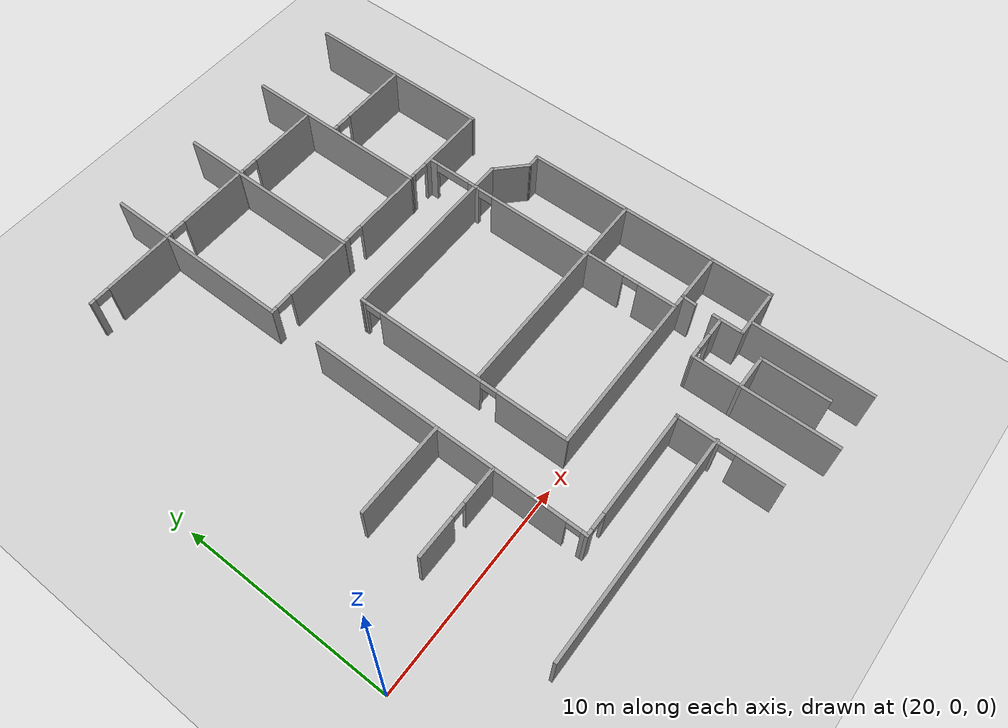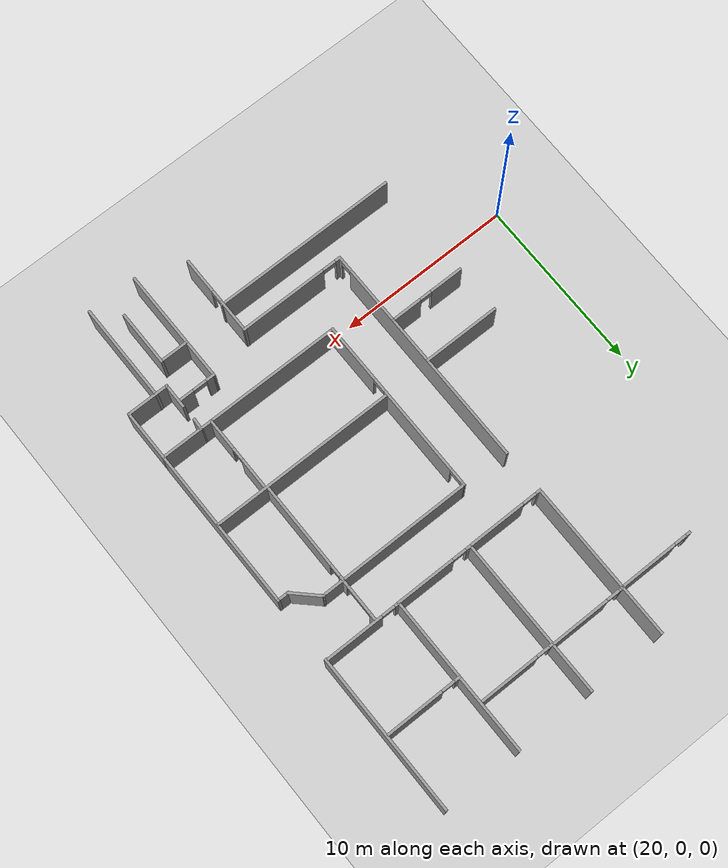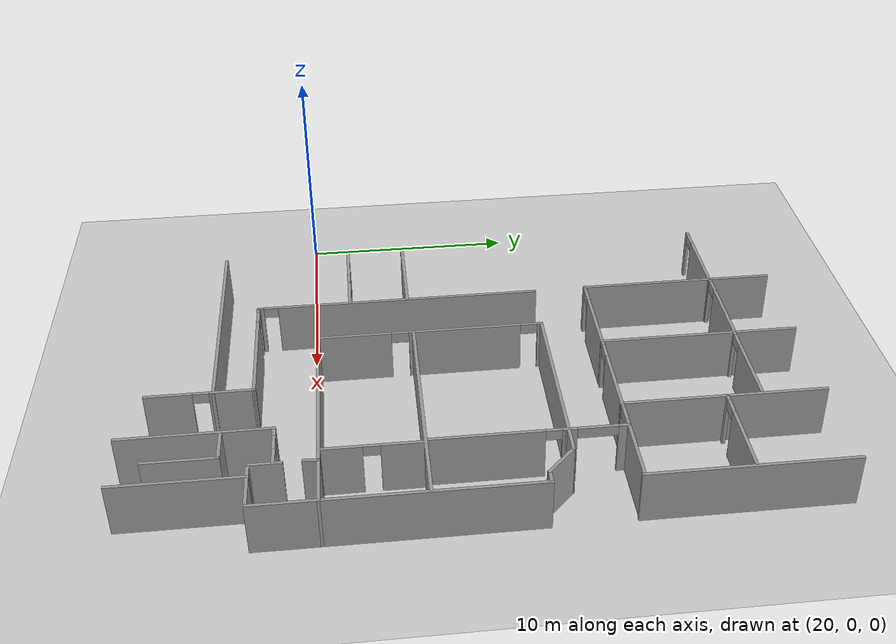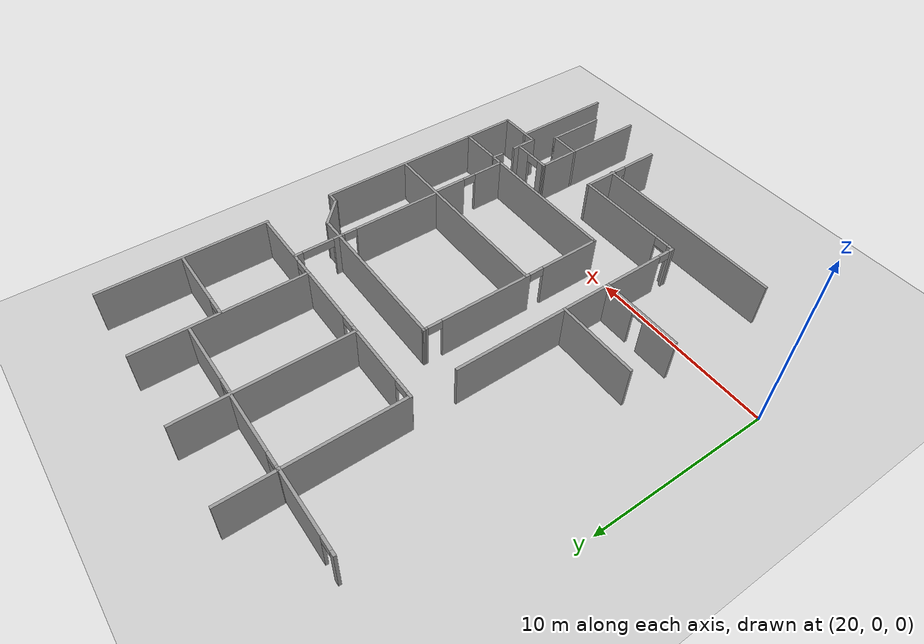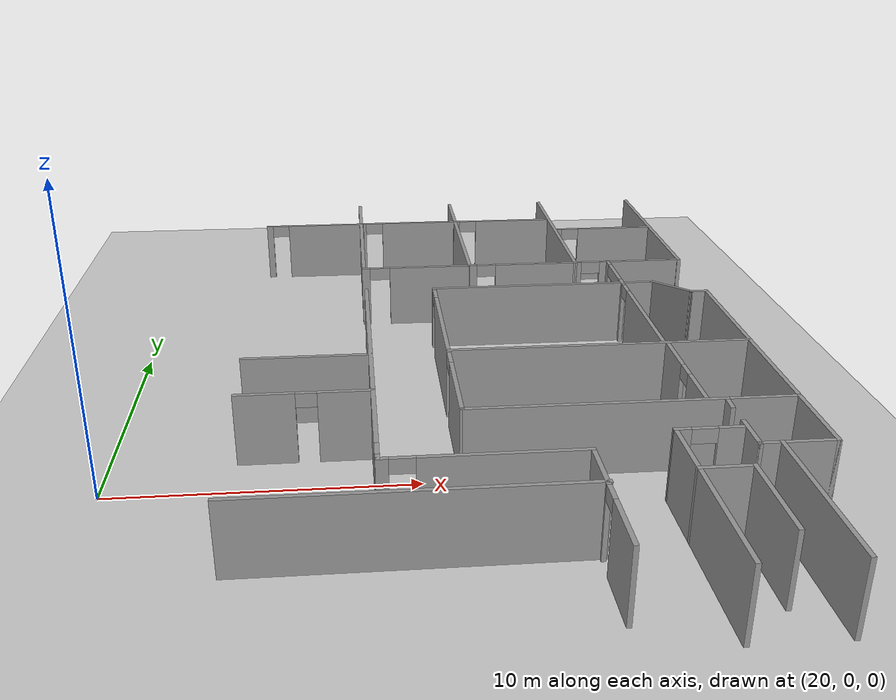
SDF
<sdf version="1.7">
 <world name="default">
  <model name="ground_plane">
   <static>1</static>
   <link name="link">
    <collision name="collision">
     <geometry><plane><normal>0 0 1</normal><size>100 100</size></plane></geometry>
     <surface>
      <contact><collide_bitmask>65535</collide_bitmask></contact>
      <friction><ode><mu>100</mu><mu2>50</mu2></ode></friction>
     </surface>
    </collision>
    <visual name="visual">
     <cast_shadows>0</cast_shadows>
     <geometry><plane><normal>0 0 1</normal><size>100 100</size></plane></geometry>
     <material>
      <script><uri>file://media/materials/scripts/gazebo.material</uri><name>Gazebo/Grey</name></script>
     </material>
    </visual>
   </link>
  </model>
  <model name="anglo_3_andar_metade">
   <pose>-4.28797 -1.08288 0 0 -0 0</pose>
   <link name="Wall_11">
    <collision name="Wall_11_Collision">
     <geometry><box><size>9.25 0.15 2.5</size></box></geometry>
     <pose>0 0 1.25 0 -0 0</pose>
    </collision>
    <visual name="Wall_11_Visual">
     <pose>0 0 1.25 0 -0 0</pose>
     <geometry><box><size>9.25 0.15 2.5</size></box></geometry>
     <material>
      <script><uri>file://media/materials/scripts/gazebo.material</uri><name>Gazebo/Grey</name></script>
      <ambient>1 1 1 1</ambient>
     </material>
     <meta><layer>0</layer></meta>
    </visual>
    <pose>41.6877 18.8137 0 0 -0 -1.5708</pose>
   </link>
   <link name="Wall_13">
    <pose>43.8627 14.2737 0 0 -0 0</pose>
    <visual name="Wall_13_Visual_0">
     <pose>-2.08 0 1.25 0 -0 0</pose>
     <geometry><box><size>0.34 0.15 2.5</size></box></geometry>
     <material>
      <script><uri>file://media/materials/scripts/gazebo.material</uri><name>Gazebo/Grey</name></script>
      <ambient>1 1 1 1</ambient>
     </material>
     <meta><layer>0</layer></meta>
    </visual>
    <collision name="Wall_13_Collision_0">
     <geometry><box><size>0.34 0.15 2.5</size></box></geometry>
     <pose>-2.08 0 1.25 0 -0 0</pose>
    </collision>
    <visual name="Wall_13_Visual_1">
     <pose>0.56 0 1.25 0 -0 0</pose>
     <geometry><box><size>3.38 0.15 2.5</size></box></geometry>
     <material>
      <script><uri>file://media/materials/scripts/gazebo.material</uri><name>Gazebo/Grey</name></script>
      <ambient>1 1 1 1</ambient>
     </material>
     <meta><layer>0</layer></meta>
    </visual>
    <collision name="Wall_13_Collision_1">
     <geometry><box><size>3.38 0.15 2.5</size></box></geometry>
     <pose>0.56 0 1.25 0 -0 0</pose>
    </collision>
    <visual name="Wall_13_Visual_2">
     <pose>-1.52 0 2.25 0 -0 0</pose>
     <geometry><box><size>0.78 0.15 0.5</size></box></geometry>
     <material>
      <script><uri>file://media/materials/scripts/gazebo.material</uri><name>Gazebo/Grey</name></script>
      <ambient>1 1 1 1</ambient>
     </material>
     <meta><layer>0</layer></meta>
    </visual>
    <collision name="Wall_13_Collision_2">
     <geometry><box><size>0.78 0.15 0.5</size></box></geometry>
     <pose>-1.52 0 2.25 0 -0 0</pose>
    </collision>
   </link>
   <link name="Wall_15">
    <pose>43.8727 18.9037 0 0 -0 0</pose>
    <visual name="Wall_15_Visual_0">
     <pose>-2.065 0 1.25 0 -0 0</pose>
     <geometry><box><size>0.370002 0.15 2.5</size></box></geometry>
     <material>
      <script><uri>file://media/materials/scripts/gazebo.material</uri><name>Gazebo/Grey</name></script>
      <ambient>1 1 1 1</ambient>
     </material>
     <meta><layer>0</layer></meta>
    </visual>
    <collision name="Wall_15_Collision_0">
     <geometry><box><size>0.370002 0.15 2.5</size></box></geometry>
     <pose>-2.065 0 1.25 0 -0 0</pose>
    </collision>
    <visual name="Wall_15_Visual_1">
     <pose>0.575001 0 1.25 0 -0 0</pose>
     <geometry><box><size>3.35 0.15 2.5</size></box></geometry>
     <material>
      <script><uri>file://media/materials/scripts/gazebo.material</uri><name>Gazebo/Grey</name></script>
      <ambient>1 1 1 1</ambient>
     </material>
     <meta><layer>0</layer></meta>
    </visual>
    <collision name="Wall_15_Collision_1">
     <geometry><box><size>3.35 0.15 2.5</size></box></geometry>
     <pose>0.575001 0 1.25 0 -0 0</pose>
    </collision>
    <visual name="Wall_15_Visual_2">
     <pose>-1.49 0 2.25 0 -0 0</pose>
     <geometry><box><size>0.78 0.15 0.5</size></box></geometry>
     <material>
      <script><uri>file://media/materials/scripts/gazebo.material</uri><name>Gazebo/Grey</name></script>
      <ambient>1 1 1 1</ambient>
     </material>
     <meta><layer>0</layer></meta>
    </visual>
    <collision name="Wall_15_Collision_2">
     <geometry><box><size>0.78 0.15 0.5</size></box></geometry>
     <pose>-1.49 0 2.25 0 -0 0</pose>
    </collision>
   </link>
   <link name="Wall_17">
    <collision name="Wall_17_Collision">
     <geometry><box><size>9.25 0.15 2.5</size></box></geometry>
     <pose>0 0 1.25 0 -0 0</pose>
    </collision>
    <visual name="Wall_17_Visual">
     <pose>0 0 1.25 0 -0 0</pose>
     <geometry><box><size>9.25 0.15 2.5</size></box></geometry>
     <material>
      <script><uri>file://media/materials/scripts/gazebo.material</uri><name>Gazebo/Grey</name></script>
      <ambient>1 1 1 1</ambient>
     </material>
     <meta><layer>0</layer></meta>
    </visual>
    <pose>37.1877 18.8237 0 0 -0 -1.5708</pose>
   </link>
   <link name="Wall_19">
    <pose>39.4377 14.2687 0 0 -0 -0.002222</pose>
    <visual name="Wall_19_Visual_0">
     <pose>-2.13754 0 1.25 0 -0 0</pose>
     <geometry><box><size>0.374924 0.15 2.5</size></box></geometry>
     <material>
      <script><uri>file://media/materials/scripts/gazebo.material</uri><name>Gazebo/Grey</name></script>
      <ambient>1 1 1 1</ambient>
     </material>
     <meta><layer>0</layer></meta>
    </visual>
    <collision name="Wall_19_Collision_0">
     <geometry><box><size>0.374924 0.15 2.5</size></box></geometry>
     <pose>-2.13754 0 1.25 0 -0 0</pose>
    </collision>
    <visual name="Wall_19_Visual_1">
     <pose>0.587462 0 1.25 0 -0 0</pose>
     <geometry><box><size>3.47508 0.15 2.5</size></box></geometry>
     <material>
      <script><uri>file://media/materials/scripts/gazebo.material</uri><name>Gazebo/Grey</name></script>
      <ambient>1 1 1 1</ambient>
     </material>
     <meta><layer>0</layer></meta>
    </visual>
    <collision name="Wall_19_Collision_1">
     <geometry><box><size>3.47508 0.15 2.5</size></box></geometry>
     <pose>0.587462 0 1.25 0 -0 0</pose>
    </collision>
    <visual name="Wall_19_Visual_2">
     <pose>-1.55008 0 2.25 0 -0 0</pose>
     <geometry><box><size>0.8 0.15 0.5</size></box></geometry>
     <material>
      <script><uri>file://media/materials/scripts/gazebo.material</uri><name>Gazebo/Grey</name></script>
      <ambient>1 1 1 1</ambient>
     </material>
     <meta><layer>0</layer></meta>
    </visual>
    <collision name="Wall_19_Collision_2">
     <geometry><box><size>0.8 0.15 0.5</size></box></geometry>
     <pose>-1.55008 0 2.25 0 -0 0</pose>
    </collision>
   </link>
   <link name="Wall_21">
    <pose>39.3627 20.4837 0 0 -0 0</pose>
    <visual name="Wall_21_Visual_0">
     <pose>-2.11 0 1.25 0 -0 0</pose>
     <geometry><box><size>0.280001 0.15 2.5</size></box></geometry>
     <material>
      <script><uri>file://media/materials/scripts/gazebo.material</uri><name>Gazebo/Grey</name></script>
      <ambient>1 1 1 1</ambient>
     </material>
     <meta><layer>0</layer></meta>
    </visual>
    <collision name="Wall_21_Collision_0">
     <geometry><box><size>0.280001 0.15 2.5</size></box></geometry>
     <pose>-2.11 0 1.25 0 -0 0</pose>
    </collision>
    <visual name="Wall_21_Visual_1">
     <pose>0.525 0 1.25 0 -0 0</pose>
     <geometry><box><size>3.45 0.15 2.5</size></box></geometry>
     <material>
      <script><uri>file://media/materials/scripts/gazebo.material</uri><name>Gazebo/Grey</name></script>
      <ambient>1 1 1 1</ambient>
     </material>
     <meta><layer>0</layer></meta>
    </visual>
    <collision name="Wall_21_Collision_1">
     <geometry><box><size>3.45 0.15 2.5</size></box></geometry>
     <pose>0.525 0 1.25 0 -0 0</pose>
    </collision>
    <visual name="Wall_21_Visual_2">
     <pose>-1.585 0 2.25 0 -0 0</pose>
     <geometry><box><size>0.77 0.15 0.5</size></box></geometry>
     <material>
      <script><uri>file://media/materials/scripts/gazebo.material</uri><name>Gazebo/Grey</name></script>
      <ambient>1 1 1 1</ambient>
     </material>
     <meta><layer>0</layer></meta>
    </visual>
    <collision name="Wall_21_Collision_2">
     <geometry><box><size>0.77 0.15 0.5</size></box></geometry>
     <pose>-1.585 0 2.25 0 -0 0</pose>
    </collision>
   </link>
   <link name="Wall_23">
    <collision name="Wall_23_Collision">
     <geometry><box><size>9.25 0.15 2.5</size></box></geometry>
     <pose>0 0 1.25 0 -0 0</pose>
    </collision>
    <visual name="Wall_23_Visual">
     <pose>0 0 1.25 0 -0 0</pose>
     <geometry><box><size>9.25 0.15 2.5</size></box></geometry>
     <material>
      <script><uri>file://media/materials/scripts/gazebo.material</uri><name>Gazebo/Grey</name></script>
      <ambient>1 1 1 1</ambient>
     </material>
     <meta><layer>0</layer></meta>
    </visual>
    <pose>32.7377 18.8237 0 0 -0 -1.5708</pose>
   </link>
   <link name="Wall_25">
    <pose>34.9127 14.2637 0 0 -0 0</pose>
    <visual name="Wall_25_Visual_0">
     <pose>-2.085 0 1.25 0 -0 0</pose>
     <geometry><box><size>0.329999 0.15 2.5</size></box></geometry>
     <material>
      <script><uri>file://media/materials/scripts/gazebo.material</uri><name>Gazebo/Grey</name></script>
      <ambient>1 1 1 1</ambient>
     </material>
     <meta><layer>0</layer></meta>
    </visual>
    <collision name="Wall_25_Collision_0">
     <geometry><box><size>0.329999 0.15 2.5</size></box></geometry>
     <pose>-2.085 0 1.25 0 -0 0</pose>
    </collision>
    <visual name="Wall_25_Visual_1">
     <pose>0.579999 0 1.25 0 -0 0</pose>
     <geometry><box><size>3.34 0.15 2.5</size></box></geometry>
     <material>
      <script><uri>file://media/materials/scripts/gazebo.material</uri><name>Gazebo/Grey</name></script>
      <ambient>1 1 1 1</ambient>
     </material>
     <meta><layer>0</layer></meta>
    </visual>
    <collision name="Wall_25_Collision_1">
     <geometry><box><size>3.34 0.15 2.5</size></box></geometry>
     <pose>0.579999 0 1.25 0 -0 0</pose>
    </collision>
    <visual name="Wall_25_Visual_2">
     <pose>-1.505 0 2.25 0 -0 0</pose>
     <geometry><box><size>0.83 0.15 0.5</size></box></geometry>
     <material>
      <script><uri>file://media/materials/scripts/gazebo.material</uri><name>Gazebo/Grey</name></script>
      <ambient>1 1 1 1</ambient>
     </material>
     <meta><layer>0</layer></meta>
    </visual>
    <collision name="Wall_25_Collision_2">
     <geometry><box><size>0.83 0.15 0.5</size></box></geometry>
     <pose>-1.505 0 2.25 0 -0 0</pose>
    </collision>
   </link>
   <link name="Wall_27">
    <pose>34.9127 20.5137 0 0 -0 0</pose>
    <visual name="Wall_27_Visual_0">
     <pose>-2.0975 0 1.25 0 -0 0</pose>
     <geometry><box><size>0.305002 0.15 2.5</size></box></geometry>
     <material>
      <script><uri>file://media/materials/scripts/gazebo.material</uri><name>Gazebo/Grey</name></script>
      <ambient>1 1 1 1</ambient>
     </material>
     <meta><layer>0</layer></meta>
    </visual>
    <collision name="Wall_27_Collision_0">
     <geometry><box><size>0.305002 0.15 2.5</size></box></geometry>
     <pose>-2.0975 0 1.25 0 -0 0</pose>
    </collision>
    <visual name="Wall_27_Visual_1">
     <pose>0.537501 0 1.25 0 -0 0</pose>
     <geometry><box><size>3.425 0.15 2.5</size></box></geometry>
     <material>
      <script><uri>file://media/materials/scripts/gazebo.material</uri><name>Gazebo/Grey</name></script>
      <ambient>1 1 1 1</ambient>
     </material>
     <meta><layer>0</layer></meta>
    </visual>
    <collision name="Wall_27_Collision_1">
     <geometry><box><size>3.425 0.15 2.5</size></box></geometry>
     <pose>0.537501 0 1.25 0 -0 0</pose>
    </collision>
    <visual name="Wall_27_Visual_2">
     <pose>-1.56 0 2.25 0 -0 0</pose>
     <geometry><box><size>0.77 0.15 0.5</size></box></geometry>
     <material>
      <script><uri>file://media/materials/scripts/gazebo.material</uri><name>Gazebo/Grey</name></script>
      <ambient>1 1 1 1</ambient>
     </material>
     <meta><layer>0</layer></meta>
    </visual>
    <collision name="Wall_27_Collision_2">
     <geometry><box><size>0.77 0.15 0.5</size></box></geometry>
     <pose>-1.56 0 2.25 0 -0 0</pose>
    </collision>
   </link>
   <link name="Wall_36">
    <pose>30.5927 20.4837 0 0 -0 0</pose>
    <visual name="Wall_36_Visual_0">
     <pose>-2.11 0 1.25 0 -0 0</pose>
     <geometry><box><size>0.28 0.15 2.5</size></box></geometry>
     <material>
      <script><uri>file://media/materials/scripts/gazebo.material</uri><name>Gazebo/Grey</name></script>
      <ambient>1 1 1 1</ambient>
     </material>
     <meta><layer>0</layer></meta>
    </visual>
    <collision name="Wall_36_Collision_0">
     <geometry><box><size>0.28 0.15 2.5</size></box></geometry>
     <pose>-2.11 0 1.25 0 -0 0</pose>
    </collision>
    <visual name="Wall_36_Visual_1">
     <pose>0.505 0 1.25 0 -0 0</pose>
     <geometry><box><size>3.49 0.15 2.5</size></box></geometry>
     <material>
      <script><uri>file://media/materials/scripts/gazebo.material</uri><name>Gazebo/Grey</name></script>
      <ambient>1 1 1 1</ambient>
     </material>
     <meta><layer>0</layer></meta>
    </visual>
    <collision name="Wall_36_Collision_1">
     <geometry><box><size>3.49 0.15 2.5</size></box></geometry>
     <pose>0.505 0 1.25 0 -0 0</pose>
    </collision>
    <visual name="Wall_36_Visual_2">
     <pose>-1.605 0 2.25 0 -0 0</pose>
     <geometry><box><size>0.73 0.15 0.5</size></box></geometry>
     <material>
      <script><uri>file://media/materials/scripts/gazebo.material</uri><name>Gazebo/Grey</name></script>
      <ambient>1 1 1 1</ambient>
     </material>
     <meta><layer>0</layer></meta>
    </visual>
    <collision name="Wall_36_Collision_2">
     <geometry><box><size>0.73 0.15 0.5</size></box></geometry>
     <pose>-1.605 0 2.25 0 -0 0</pose>
    </collision>
   </link>
   <link name="Wall_462">
    <collision name="Wall_462_Collision">
     <geometry><box><size>6.75 0.15 2.5</size></box></geometry>
     <pose>0 0 1.25 0 -0 0</pose>
    </collision>
    <visual name="Wall_462_Visual">
     <pose>0 0 1.25 0 -0 0</pose>
     <geometry><box><size>6.75 0.15 2.5</size></box></geometry>
     <material>
      <script><uri>file://media/materials/scripts/gazebo.material</uri><name>Gazebo/Grey</name></script>
      <ambient>1 1 1 1</ambient>
     </material>
     <meta><layer>0</layer></meta>
    </visual>
    <pose>41.6426 -3.8514 0 0 -0 1.57383</pose>
   </link>
   <link name="Wall_464">
    <pose>42.6826 -0.551396 0 0 -0 0</pose>
    <visual name="Wall_464_Visual_0">
     <pose>-0.847462 0 1.25 0 -0 0</pose>
     <geometry><box><size>0.555076 0.15 2.5</size></box></geometry>
     <material>
      <script><uri>file://media/materials/scripts/gazebo.material</uri><name>Gazebo/Grey</name></script>
      <ambient>1 1 1 1</ambient>
     </material>
     <meta><layer>0</layer></meta>
    </visual>
    <collision name="Wall_464_Collision_0">
     <geometry><box><size>0.555076 0.15 2.5</size></box></geometry>
     <pose>-0.847462 0 1.25 0 -0 0</pose>
    </collision>
    <visual name="Wall_464_Visual_1">
     <pose>0.687538 0 1.25 0 -0 0</pose>
     <geometry><box><size>0.874924 0.15 2.5</size></box></geometry>
     <material>
      <script><uri>file://media/materials/scripts/gazebo.material</uri><name>Gazebo/Grey</name></script>
      <ambient>1 1 1 1</ambient>
     </material>
     <meta><layer>0</layer></meta>
    </visual>
    <collision name="Wall_464_Collision_1">
     <geometry><box><size>0.874924 0.15 2.5</size></box></geometry>
     <pose>0.687538 0 1.25 0 -0 0</pose>
    </collision>
    <visual name="Wall_464_Visual_2">
     <pose>-0.159924 0 2.25 0 -0 0</pose>
     <geometry><box><size>0.82 0.15 0.5</size></box></geometry>
     <material>
      <script><uri>file://media/materials/scripts/gazebo.material</uri><name>Gazebo/Grey</name></script>
      <ambient>1 1 1 1</ambient>
     </material>
     <meta><layer>0</layer></meta>
    </visual>
    <collision name="Wall_464_Collision_2">
     <geometry><box><size>0.82 0.15 0.5</size></box></geometry>
     <pose>-0.159924 0 2.25 0 -0 0</pose>
    </collision>
   </link>
   <link name="Wall_467">
    <collision name="Wall_467_Collision">
     <geometry><box><size>1.75 0.15 2.5</size></box></geometry>
     <pose>0 0 1.25 0 -0 0</pose>
    </collision>
    <visual name="Wall_467_Visual">
     <pose>0 0 1.25 0 -0 0</pose>
     <geometry><box><size>1.75 0.15 2.5</size></box></geometry>
     <material>
      <script><uri>file://media/materials/scripts/gazebo.material</uri><name>Gazebo/Grey</name></script>
      <ambient>1 1 1 1</ambient>
     </material>
     <meta><layer>0</layer></meta>
    </visual>
    <pose>42.4377 -2.77632 0 0 -0 0</pose>
   </link>
   <link name="Wall_468">
    <collision name="Wall_468_Collision">
     <geometry><box><size>3.25 0.15 2.5</size></box></geometry>
     <pose>0 0 1.25 0 -0 0</pose>
    </collision>
    <visual name="Wall_468_Visual">
     <pose>0 0 1.25 0 -0 0</pose>
     <geometry><box><size>3.25 0.15 2.5</size></box></geometry>
     <material>
      <script><uri>file://media/materials/scripts/gazebo.material</uri><name>Gazebo/Grey</name></script>
      <ambient>1 1 1 1</ambient>
     </material>
     <meta><layer>0</layer></meta>
    </visual>
    <pose>43.2377 -4.32632 0 0 -0 -1.5708</pose>
   </link>
   <link name="Wall_472">
    <collision name="Wall_472_Collision">
     <geometry><box><size>5.75 0.15 2.5</size></box></geometry>
     <pose>0 0 1.25 0 -0 0</pose>
    </collision>
    <visual name="Wall_472_Visual">
     <pose>0 0 1.25 0 -0 0</pose>
     <geometry><box><size>5.75 0.15 2.5</size></box></geometry>
     <material>
      <script><uri>file://media/materials/scripts/gazebo.material</uri><name>Gazebo/Grey</name></script>
      <ambient>1 1 1 1</ambient>
     </material>
     <meta><layer>0</layer></meta>
    </visual>
    <pose>44.4926 -4.3514 0 0 -0 1.5708</pose>
   </link>
   <link name="Wall_474">
    <collision name="Wall_474_Collision">
     <geometry><box><size>0.740762 0.15 2.5</size></box></geometry>
     <pose>0 0 1.25 0 -0 0</pose>
    </collision>
    <visual name="Wall_474_Visual">
     <pose>0 0 1.25 0 -0 0</pose>
     <geometry><box><size>0.740762 0.15 2.5</size></box></geometry>
     <material>
      <script><uri>file://media/materials/scripts/gazebo.material</uri><name>Gazebo/Grey</name></script>
      <ambient>1 1 1 1</ambient>
     </material>
     <meta><layer>0</layer></meta>
    </visual>
    <pose>43.8127 0.98868 0 0 -0 -1.6216</pose>
   </link>
   <link name="Wall_476">
    <collision name="Wall_476_Collision">
     <geometry><box><size>1.5 0.15 2.5</size></box></geometry>
     <pose>0 0 1.25 0 -0 0</pose>
    </collision>
    <visual name="Wall_476_Visual">
     <pose>0 0 1.25 0 -0 0</pose>
     <geometry><box><size>1.5 0.15 2.5</size></box></geometry>
     <material>
      <script><uri>file://media/materials/scripts/gazebo.material</uri><name>Gazebo/Grey</name></script>
      <ambient>1 1 1 1</ambient>
     </material>
     <meta><layer>0</layer></meta>
    </visual>
    <pose>43.8177 -0.89132 0 0 -0 -1.5708</pose>
   </link>
   <link name="Wall_477">
    <collision name="Wall_477_Collision">
     <geometry><box><size>2.5 0.15 2.5</size></box></geometry>
     <pose>0 0 1.25 0 -0 0</pose>
    </collision>
    <visual name="Wall_477_Visual">
     <pose>0 0 1.25 0 -0 0</pose>
     <geometry><box><size>2.5 0.15 2.5</size></box></geometry>
     <material>
      <script><uri>file://media/materials/scripts/gazebo.material</uri><name>Gazebo/Grey</name></script>
      <ambient>1 1 1 1</ambient>
     </material>
     <meta><layer>0</layer></meta>
    </visual>
    <pose>44.9927 -1.56632 0 0 -0 0</pose>
   </link>
   <link name="Wall_478">
    <collision name="Wall_478_Collision">
     <geometry><box><size>3 0.15 2.5</size></box></geometry>
     <pose>0 0 1.25 0 -0 0</pose>
    </collision>
    <visual name="Wall_478_Visual">
     <pose>0 0 1.25 0 -0 0</pose>
     <geometry><box><size>3 0.15 2.5</size></box></geometry>
     <material>
      <script><uri>file://media/materials/scripts/gazebo.material</uri><name>Gazebo/Grey</name></script>
      <ambient>1 1 1 1</ambient>
     </material>
     <meta><layer>0</layer></meta>
    </visual>
    <pose>46.1677 -0.14132 0 0 -0 1.5708</pose>
   </link>
   <link name="Wall_479">
    <collision name="Wall_479_Collision">
     <geometry><box><size>2.49 0.15 2.5</size></box></geometry>
     <pose>0 0 1.25 0 -0 0</pose>
    </collision>
    <visual name="Wall_479_Visual">
     <pose>0 0 1.25 0 -0 0</pose>
     <geometry><box><size>2.49 0.15 2.5</size></box></geometry>
     <material>
      <script><uri>file://media/materials/scripts/gazebo.material</uri><name>Gazebo/Grey</name></script>
      <ambient>1 1 1 1</ambient>
     </material>
     <meta><layer>0</layer></meta>
    </visual>
    <pose>44.9977 1.28368 0 0 -0 3.14159</pose>
   </link>
   <link name="Wall_481">
    <collision name="Wall_481_Collision">
     <geometry><box><size>8.49001 0.15 2.5</size></box></geometry>
     <pose>0 0 1.25 0 -0 0</pose>
    </collision>
    <visual name="Wall_481_Visual">
     <pose>0 0 1.25 0 -0 0</pose>
     <geometry><box><size>8.49001 0.15 2.5</size></box></geometry>
     <material>
      <script><uri>file://media/materials/scripts/gazebo.material</uri><name>Gazebo/Grey</name></script>
      <ambient>1 1 1 1</ambient>
     </material>
     <meta><layer>0</layer></meta>
    </visual>
    <pose>39.6677 1.28868 0 0 -0 3.14039</pose>
   </link>
   <link name="Wall_484">
    <pose>35.4827 6.49868 0 0 -0 1.57176</pose>
    <visual name="Wall_484_Visual_0">
     <pose>-3.55161 0 1.25 0 -0 0</pose>
     <geometry><box><size>3.45679 0.15 2.5</size></box></geometry>
     <material>
      <script><uri>file://media/materials/scripts/gazebo.material</uri><name>Gazebo/Grey</name></script>
      <ambient>1 1 1 1</ambient>
     </material>
     <meta><layer>0</layer></meta>
    </visual>
    <collision name="Wall_484_Collision_0">
     <geometry><box><size>3.45679 0.15 2.5</size></box></geometry>
     <pose>-3.55161 0 1.25 0 -0 0</pose>
    </collision>
    <visual name="Wall_484_Visual_1">
     <pose>1.5987 0 1.25 0 -0 0</pose>
     <geometry><box><size>5.22417 0.15 2.5</size></box></geometry>
     <material>
      <script><uri>file://media/materials/scripts/gazebo.material</uri><name>Gazebo/Grey</name></script>
      <ambient>1 1 1 1</ambient>
     </material>
     <meta><layer>0</layer></meta>
    </visual>
    <collision name="Wall_484_Collision_1">
     <geometry><box><size>5.22417 0.15 2.5</size></box></geometry>
     <pose>1.5987 0 1.25 0 -0 0</pose>
    </collision>
    <visual name="Wall_484_Visual_2">
     <pose>5.14028 0 1.25 0 -0 0</pose>
     <geometry><box><size>0.279448 0.15 2.5</size></box></geometry>
     <material>
      <script><uri>file://media/materials/scripts/gazebo.material</uri><name>Gazebo/Grey</name></script>
      <ambient>1 1 1 1</ambient>
     </material>
     <meta><layer>0</layer></meta>
    </visual>
    <collision name="Wall_484_Collision_2">
     <geometry><box><size>0.279448 0.15 2.5</size></box></geometry>
     <pose>5.14028 0 1.25 0 -0 0</pose>
    </collision>
    <visual name="Wall_484_Visual_3">
     <pose>-1.4183 0 2.25 0 -0 0</pose>
     <geometry><box><size>0.809828 0.15 0.5</size></box></geometry>
     <material>
      <script><uri>file://media/materials/scripts/gazebo.material</uri><name>Gazebo/Grey</name></script>
      <ambient>1 1 1 1</ambient>
     </material>
     <meta><layer>0</layer></meta>
    </visual>
    <collision name="Wall_484_Collision_3">
     <geometry><box><size>0.809828 0.15 0.5</size></box></geometry>
     <pose>-1.4183 0 2.25 0 -0 0</pose>
    </collision>
    <visual name="Wall_484_Visual_4">
     <pose>4.60567 0 2.25 0 -0 0</pose>
     <geometry><box><size>0.78977 0.15 0.5</size></box></geometry>
     <material>
      <script><uri>file://media/materials/scripts/gazebo.material</uri><name>Gazebo/Grey</name></script>
      <ambient>1 1 1 1</ambient>
     </material>
     <meta><layer>0</layer></meta>
    </visual>
    <collision name="Wall_484_Collision_4">
     <geometry><box><size>0.78977 0.15 0.5</size></box></geometry>
     <pose>4.60567 0 2.25 0 -0 0</pose>
    </collision>
   </link>
   <link name="Wall_486">
    <collision name="Wall_486_Collision">
     <geometry><box><size>9 0.15 2.5</size></box></geometry>
     <pose>0 0 1.25 0 -0 0</pose>
    </collision>
    <visual name="Wall_486_Visual">
     <pose>0 0 1.25 0 -0 0</pose>
     <geometry><box><size>9 0.15 2.5</size></box></geometry>
     <material>
      <script><uri>file://media/materials/scripts/gazebo.material</uri><name>Gazebo/Grey</name></script>
      <ambient>1 1 1 1</ambient>
     </material>
     <meta><layer>0</layer></meta>
    </visual>
    <pose>39.9027 11.7037 0 0 -0 0</pose>
   </link>
   <link name="Wall_487">
    <collision name="Wall_487_Collision">
     <geometry><box><size>1.87751 0.15 2.5</size></box></geometry>
     <pose>0 0 1.25 0 -0 0</pose>
    </collision>
    <visual name="Wall_487_Visual">
     <pose>0 0 1.25 0 -0 0</pose>
     <geometry><box><size>1.87751 0.15 2.5</size></box></geometry>
     <material>
      <script><uri>file://media/materials/scripts/gazebo.material</uri><name>Gazebo/Grey</name></script>
      <ambient>1 1 1 1</ambient>
     </material>
     <meta><layer>0</layer></meta>
    </visual>
    <pose>44.9484 11.113 0 0 -0 -0.769025</pose>
   </link>
   <link name="Wall_490">
    <collision name="Wall_490_Collision">
     <geometry><box><size>9.25 0.15 2.5</size></box></geometry>
     <pose>0 0 1.25 0 -0 0</pose>
    </collision>
    <visual name="Wall_490_Visual">
     <pose>0 0 1.25 0 -0 0</pose>
     <geometry><box><size>9.25 0.15 2.5</size></box></geometry>
     <material>
      <script><uri>file://media/materials/scripts/gazebo.material</uri><name>Gazebo/Grey</name></script>
      <ambient>1 1 1 1</ambient>
     </material>
     <meta><layer>0</layer></meta>
    </visual>
    <pose>46.1691 5.96231 0 0 -0 -1.5708</pose>
   </link>
   <link name="Wall_492">
    <collision name="Wall_492_Collision">
     <geometry><box><size>0.75 0.15 2.5</size></box></geometry>
     <pose>0 0 1.25 0 -0 0</pose>
    </collision>
    <visual name="Wall_492_Visual">
     <pose>0 0 1.25 0 -0 0</pose>
     <geometry><box><size>0.75 0.15 2.5</size></box></geometry>
     <material>
      <script><uri>file://media/materials/scripts/gazebo.material</uri><name>Gazebo/Grey</name></script>
      <ambient>1 1 1 1</ambient>
     </material>
     <meta><layer>0</layer></meta>
    </visual>
    <pose>45.8691 10.5123 0 0 -0 0</pose>
   </link>
   <link name="Wall_495">
    <collision name="Wall_495_Collision">
     <geometry><box><size>10.75 0.15 2.5</size></box></geometry>
     <pose>0 0 1.25 0 -0 0</pose>
    </collision>
    <visual name="Wall_495_Visual">
     <pose>0 0 1.25 0 -0 0</pose>
     <geometry><box><size>10.75 0.15 2.5</size></box></geometry>
     <material>
      <script><uri>file://media/materials/scripts/gazebo.material</uri><name>Gazebo/Grey</name></script>
      <ambient>1 1 1 1</ambient>
     </material>
     <meta><layer>0</layer></meta>
    </visual>
    <pose>40.8077 5.70368 0 0 -0 0</pose>
   </link>
   <link name="Wall_497">
    <pose>43.0877 8.73868 0 0 -0 -1.5708</pose>
    <visual name="Wall_497_Visual_0">
     <pose>-2.83782 0 1.25 0 -0 0</pose>
     <geometry><box><size>0.264359 0.15 2.5</size></box></geometry>
     <material>
      <script><uri>file://media/materials/scripts/gazebo.material</uri><name>Gazebo/Grey</name></script>
      <ambient>1 1 1 1</ambient>
     </material>
     <meta><layer>0</layer></meta>
    </visual>
    <collision name="Wall_497_Collision_0">
     <geometry><box><size>0.264359 0.15 2.5</size></box></geometry>
     <pose>-2.83782 0 1.25 0 -0 0</pose>
    </collision>
    <visual name="Wall_497_Visual_1">
     <pose>0.487179 0 1.25 0 -0 0</pose>
     <geometry><box><size>4.96564 0.15 2.5</size></box></geometry>
     <material>
      <script><uri>file://media/materials/scripts/gazebo.material</uri><name>Gazebo/Grey</name></script>
      <ambient>1 1 1 1</ambient>
     </material>
     <meta><layer>0</layer></meta>
    </visual>
    <collision name="Wall_497_Collision_1">
     <geometry><box><size>4.96564 0.15 2.5</size></box></geometry>
     <pose>0.487179 0 1.25 0 -0 0</pose>
    </collision>
    <visual name="Wall_497_Visual_2">
     <pose>-2.35064 0 2.25 0 -0 0</pose>
     <geometry><box><size>0.71 0.15 0.5</size></box></geometry>
     <material>
      <script><uri>file://media/materials/scripts/gazebo.material</uri><name>Gazebo/Grey</name></script>
      <ambient>1 1 1 1</ambient>
     </material>
     <meta><layer>0</layer></meta>
    </visual>
    <collision name="Wall_497_Collision_2">
     <geometry><box><size>0.71 0.15 0.5</size></box></geometry>
     <pose>-2.35064 0 2.25 0 -0 0</pose>
    </collision>
   </link>
   <link name="Wall_5">
    <collision name="Wall_5_Collision">
     <geometry><box><size>9.25 0.15 2.5</size></box></geometry>
     <pose>0 0 1.25 0 -0 0</pose>
    </collision>
    <visual name="Wall_5_Visual">
     <pose>0 0 1.25 0 -0 0</pose>
     <geometry><box><size>9.25 0.15 2.5</size></box></geometry>
     <material>
      <script><uri>file://media/materials/scripts/gazebo.material</uri><name>Gazebo/Grey</name></script>
      <ambient>1 1 1 1</ambient>
     </material>
     <meta><layer>0</layer></meta>
    </visual>
    <pose>46.1677 18.7837 0 0 -0 -1.5708</pose>
   </link>
   <link name="Wall_502">
    <pose>43.1977 3.49868 0 0 -0 -1.5708</pose>
    <visual name="Wall_502_Visual_0">
     <pose>-1.29 0 1.25 0 -0 0</pose>
     <geometry><box><size>1.92 0.15 2.5</size></box></geometry>
     <material>
      <script><uri>file://media/materials/scripts/gazebo.material</uri><name>Gazebo/Grey</name></script>
      <ambient>1 1 1 1</ambient>
     </material>
     <meta><layer>0</layer></meta>
    </visual>
    <collision name="Wall_502_Collision_0">
     <geometry><box><size>1.92 0.15 2.5</size></box></geometry>
     <pose>-1.29 0 1.25 0 -0 0</pose>
    </collision>
    <visual name="Wall_502_Visual_1">
     <pose>1.33 0 1.25 0 -0 0</pose>
     <geometry><box><size>1.84 0.15 2.5</size></box></geometry>
     <material>
      <script><uri>file://media/materials/scripts/gazebo.material</uri><name>Gazebo/Grey</name></script>
      <ambient>1 1 1 1</ambient>
     </material>
     <meta><layer>0</layer></meta>
    </visual>
    <collision name="Wall_502_Collision_1">
     <geometry><box><size>1.84 0.15 2.5</size></box></geometry>
     <pose>1.33 0 1.25 0 -0 0</pose>
    </collision>
    <visual name="Wall_502_Visual_2">
     <pose>0.04 0 2.25 0 -0 0</pose>
     <geometry><box><size>0.74 0.15 0.5</size></box></geometry>
     <material>
      <script><uri>file://media/materials/scripts/gazebo.material</uri><name>Gazebo/Grey</name></script>
      <ambient>1 1 1 1</ambient>
     </material>
     <meta><layer>0</layer></meta>
    </visual>
    <collision name="Wall_502_Collision_2">
     <geometry><box><size>0.74 0.15 0.5</size></box></geometry>
     <pose>0.04 0 2.25 0 -0 0</pose>
    </collision>
   </link>
   <link name="Wall_504">
    <pose>43.0977 12.9337 0 0 -0 1.5708</pose>
    <visual name="Wall_504_Visual_0">
     <pose>-1.1175 0 1.25 0 -0 0</pose>
     <geometry><box><size>0.515 0.15 2.5</size></box></geometry>
     <material>
      <script><uri>file://media/materials/scripts/gazebo.material</uri><name>Gazebo/Grey</name></script>
      <ambient>1 1 1 1</ambient>
     </material>
     <meta><layer>0</layer></meta>
    </visual>
    <collision name="Wall_504_Collision_0">
     <geometry><box><size>0.515 0.15 2.5</size></box></geometry>
     <pose>-1.1175 0 1.25 0 -0 0</pose>
    </collision>
    <visual name="Wall_504_Visual_1">
     <pose>1.1375 0 1.25 0 -0 0</pose>
     <geometry><box><size>0.475 0.15 2.5</size></box></geometry>
     <material>
      <script><uri>file://media/materials/scripts/gazebo.material</uri><name>Gazebo/Grey</name></script>
      <ambient>1 1 1 1</ambient>
     </material>
     <meta><layer>0</layer></meta>
    </visual>
    <collision name="Wall_504_Collision_1">
     <geometry><box><size>0.475 0.15 2.5</size></box></geometry>
     <pose>1.1375 0 1.25 0 -0 0</pose>
    </collision>
    <visual name="Wall_504_Visual_2">
     <pose>0.02 0 2.25 0 -0 0</pose>
     <geometry><box><size>1.76 0.15 0.5</size></box></geometry>
     <material>
      <script><uri>file://media/materials/scripts/gazebo.material</uri><name>Gazebo/Grey</name></script>
      <ambient>1 1 1 1</ambient>
     </material>
     <meta><layer>0</layer></meta>
    </visual>
    <collision name="Wall_504_Collision_2">
     <geometry><box><size>1.76 0.15 0.5</size></box></geometry>
     <pose>0.02 0 2.25 0 -0 0</pose>
    </collision>
   </link>
   <link name="Wall_514">
    <pose>38.9594 -3.82962 0 0 -0 1.5708</pose>
    <visual name="Wall_514_Visual_0">
     <pose>-1.36585 0 1.25 0 -0 0</pose>
     <geometry><box><size>2.1083 0.15 2.5</size></box></geometry>
     <material>
      <script><uri>file://media/materials/scripts/gazebo.material</uri><name>Gazebo/Grey</name></script>
      <ambient>1 1 1 1</ambient>
     </material>
     <meta><layer>0</layer></meta>
    </visual>
    <collision name="Wall_514_Collision_0">
     <geometry><box><size>2.1083 0.15 2.5</size></box></geometry>
     <pose>-1.36585 0 1.25 0 -0 0</pose>
    </collision>
    <visual name="Wall_514_Visual_1">
     <pose>1.40915 0 1.25 0 -0 0</pose>
     <geometry><box><size>2.0217 0.15 2.5</size></box></geometry>
     <material>
      <script><uri>file://media/materials/scripts/gazebo.material</uri><name>Gazebo/Grey</name></script>
      <ambient>1 1 1 1</ambient>
     </material>
     <meta><layer>0</layer></meta>
    </visual>
    <collision name="Wall_514_Collision_1">
     <geometry><box><size>2.0217 0.15 2.5</size></box></geometry>
     <pose>1.40915 0 1.25 0 -0 0</pose>
    </collision>
    <visual name="Wall_514_Visual_2">
     <pose>0.043299 0 2.25 0 -0 0</pose>
     <geometry><box><size>0.71 0.15 0.5</size></box></geometry>
     <material>
      <script><uri>file://media/materials/scripts/gazebo.material</uri><name>Gazebo/Grey</name></script>
      <ambient>1 1 1 1</ambient>
     </material>
     <meta><layer>0</layer></meta>
    </visual>
    <collision name="Wall_514_Collision_2">
     <geometry><box><size>0.71 0.15 0.5</size></box></geometry>
     <pose>0.043299 0 2.25 0 -0 0</pose>
    </collision>
   </link>
   <link name="Wall_516">
    <pose>35.8844 -1.49962 0 0 -0 -3.13997</pose>
    <visual name="Wall_516_Visual_0">
     <pose>-0.581611 0 1.25 0 -0 0</pose>
     <geometry><box><size>5.13678 0.15 2.5</size></box></geometry>
     <material>
      <script><uri>file://media/materials/scripts/gazebo.material</uri><name>Gazebo/Grey</name></script>
      <ambient>1 1 1 1</ambient>
     </material>
     <meta><layer>0</layer></meta>
    </visual>
    <collision name="Wall_516_Collision_0">
     <geometry><box><size>5.13678 0.15 2.5</size></box></geometry>
     <pose>-0.581611 0 1.25 0 -0 0</pose>
    </collision>
    <visual name="Wall_516_Visual_1">
     <pose>2.95838 0 1.25 0 -0 0</pose>
     <geometry><box><size>0.383239 0.15 2.5</size></box></geometry>
     <material>
      <script><uri>file://media/materials/scripts/gazebo.material</uri><name>Gazebo/Grey</name></script>
      <ambient>1 1 1 1</ambient>
     </material>
     <meta><layer>0</layer></meta>
    </visual>
    <collision name="Wall_516_Collision_1">
     <geometry><box><size>0.383239 0.15 2.5</size></box></geometry>
     <pose>2.95838 0 1.25 0 -0 0</pose>
    </collision>
    <visual name="Wall_516_Visual_2">
     <pose>2.37677 0 2.25 0 -0 0</pose>
     <geometry><box><size>0.779984 0.15 0.5</size></box></geometry>
     <material>
      <script><uri>file://media/materials/scripts/gazebo.material</uri><name>Gazebo/Grey</name></script>
      <ambient>1 1 1 1</ambient>
     </material>
     <meta><layer>0</layer></meta>
    </visual>
    <collision name="Wall_516_Collision_2">
     <geometry><box><size>0.779984 0.15 0.5</size></box></geometry>
     <pose>2.37677 0 2.25 0 -0 0</pose>
    </collision>
   </link>
   <link name="Wall_517">
    <pose>32.7994 5.13538 0 0 -0 1.57231</pose>
    <visual name="Wall_517_Visual_0">
     <pose>-6.54848 0 1.25 0 -0 0</pose>
     <geometry><box><size>0.313059 0.15 2.5</size></box></geometry>
     <material>
      <script><uri>file://media/materials/scripts/gazebo.material</uri><name>Gazebo/Grey</name></script>
      <ambient>1 1 1 1</ambient>
     </material>
     <meta><layer>0</layer></meta>
    </visual>
    <collision name="Wall_517_Collision_0">
     <geometry><box><size>0.313059 0.15 2.5</size></box></geometry>
     <pose>-6.54848 0 1.25 0 -0 0</pose>
    </collision>
    <visual name="Wall_517_Visual_1">
     <pose>0.491485 0 1.25 0 -0 0</pose>
     <geometry><box><size>12.427 0.15 2.5</size></box></geometry>
     <material>
      <script><uri>file://media/materials/scripts/gazebo.material</uri><name>Gazebo/Grey</name></script>
      <ambient>1 1 1 1</ambient>
     </material>
     <meta><layer>0</layer></meta>
    </visual>
    <collision name="Wall_517_Collision_1">
     <geometry><box><size>12.427 0.15 2.5</size></box></geometry>
     <pose>0.491485 0 1.25 0 -0 0</pose>
    </collision>
    <visual name="Wall_517_Visual_2">
     <pose>-6.05699 0 2.25 0 -0 0</pose>
     <geometry><box><size>0.66991 0.15 0.5</size></box></geometry>
     <material>
      <script><uri>file://media/materials/scripts/gazebo.material</uri><name>Gazebo/Grey</name></script>
      <ambient>1 1 1 1</ambient>
     </material>
     <meta><layer>0</layer></meta>
    </visual>
    <collision name="Wall_517_Collision_2">
     <geometry><box><size>0.66991 0.15 0.5</size></box></geometry>
     <pose>-6.05699 0 2.25 0 -0 0</pose>
    </collision>
   </link>
   <link name="Wall_521">
    <collision name="Wall_521_Collision">
     <geometry><box><size>4.5 0.15 2.5</size></box></geometry>
     <pose>0 0 1.25 0 -0 0</pose>
    </collision>
    <visual name="Wall_521_Visual">
     <pose>0 0 1.25 0 -0 0</pose>
     <geometry><box><size>4.5 0.15 2.5</size></box></geometry>
     <material>
      <script><uri>file://media/materials/scripts/gazebo.material</uri><name>Gazebo/Grey</name></script>
      <ambient>1 1 1 1</ambient>
     </material>
     <meta><layer>0</layer></meta>
    </visual>
    <pose>30.6227 5.58368 0 0 -0 0</pose>
   </link>
   <link name="Wall_523">
    <pose>30.6127 2.83368 0 0 -0 0</pose>
    <visual name="Wall_523_Visual_0">
     <pose>-1.26 0 1.25 0 -0 0</pose>
     <geometry><box><size>1.98 0.15 2.5</size></box></geometry>
     <material>
      <script><uri>file://media/materials/scripts/gazebo.material</uri><name>Gazebo/Grey</name></script>
      <ambient>1 1 1 1</ambient>
     </material>
     <meta><layer>0</layer></meta>
    </visual>
    <collision name="Wall_523_Collision_0">
     <geometry><box><size>1.98 0.15 2.5</size></box></geometry>
     <pose>-1.26 0 1.25 0 -0 0</pose>
    </collision>
    <visual name="Wall_523_Visual_1">
     <pose>1.335 0 1.25 0 -0 0</pose>
     <geometry><box><size>1.83 0.15 2.5</size></box></geometry>
     <material>
      <script><uri>file://media/materials/scripts/gazebo.material</uri><name>Gazebo/Grey</name></script>
      <ambient>1 1 1 1</ambient>
     </material>
     <meta><layer>0</layer></meta>
    </visual>
    <collision name="Wall_523_Collision_1">
     <geometry><box><size>1.83 0.15 2.5</size></box></geometry>
     <pose>1.335 0 1.25 0 -0 0</pose>
    </collision>
    <visual name="Wall_523_Visual_2">
     <pose>0.075001 0 2.25 0 -0 0</pose>
     <geometry><box><size>0.69 0.15 0.5</size></box></geometry>
     <material>
      <script><uri>file://media/materials/scripts/gazebo.material</uri><name>Gazebo/Grey</name></script>
      <ambient>1 1 1 1</ambient>
     </material>
     <meta><layer>0</layer></meta>
    </visual>
    <collision name="Wall_523_Collision_2">
     <geometry><box><size>0.69 0.15 0.5</size></box></geometry>
     <pose>0.075001 0 2.25 0 -0 0</pose>
    </collision>
   </link>
   <link name="Wall_525">
    <collision name="Wall_525_Collision">
     <geometry><box><size>10.75 0.15 2.5</size></box></geometry>
     <pose>0 0 1.25 0 -0 0</pose>
    </collision>
    <visual name="Wall_525_Visual">
     <pose>0 0 1.25 0 -0 0</pose>
     <geometry><box><size>10.75 0.15 2.5</size></box></geometry>
     <material>
      <script><uri>file://media/materials/scripts/gazebo.material</uri><name>Gazebo/Grey</name></script>
      <ambient>1 1 1 1</ambient>
     </material>
     <meta><layer>0</layer></meta>
    </visual>
    <pose>33.7177 -3.24632 0 0 -0 0</pose>
   </link>
   <static>1</static>
  </model>
 </world>
</sdf>
